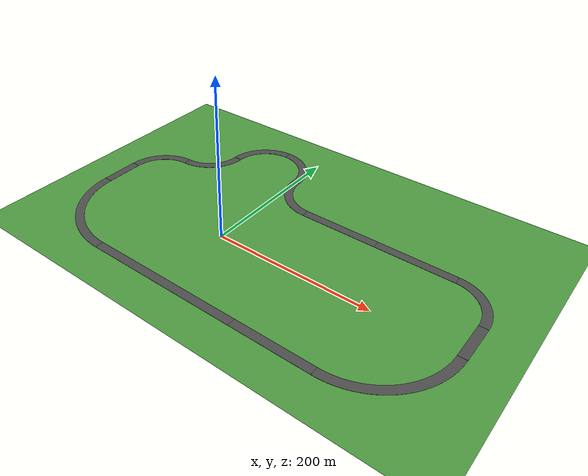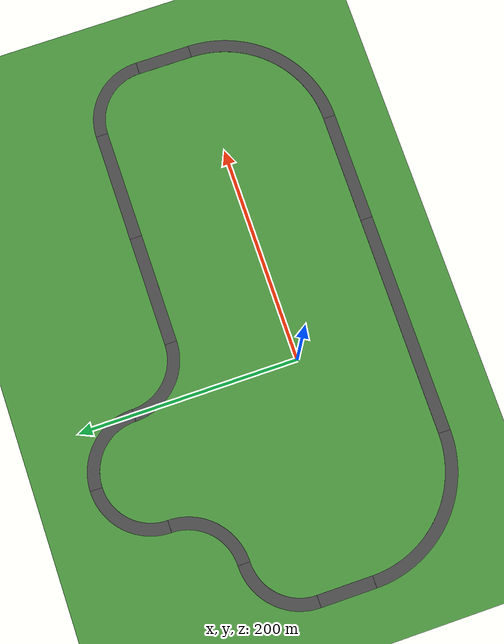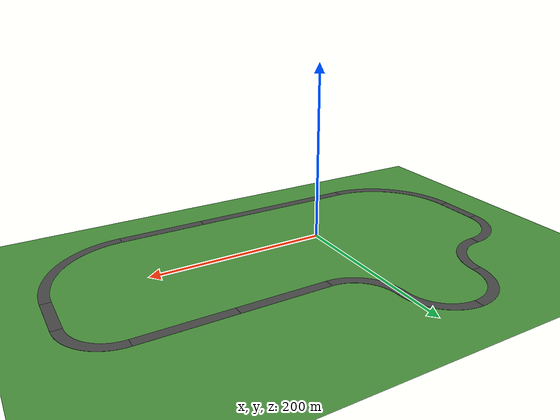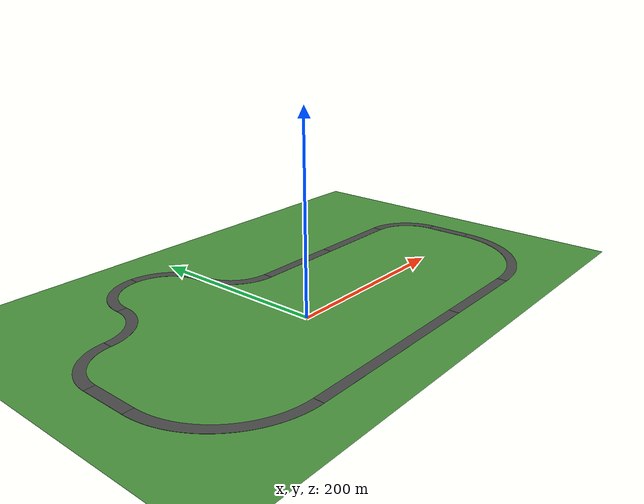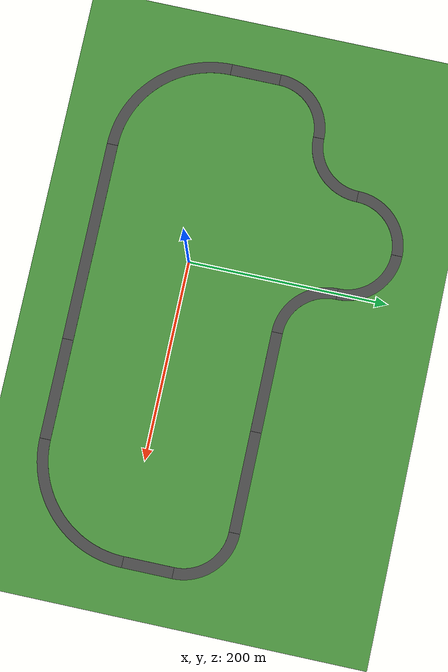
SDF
<?xml version="1.0" ?>

<sdf version="1.6">
  <world name="default">
    <!-- ROS2 Gazebo plugins -->
    <plugin name="gazebo_ros_api_plugin" filename="libgazebo_ros_api_plugin.so"/>
    <plugin name="gazebo_ros_init" filename="libgazebo_ros_init.so">
    </plugin>

    <plugin name="gazebo_ros_factory" filename="libgazebo_ros_factory.so">
    </plugin>

    <plugin name="gazebo_ros_state" filename="libgazebo_ros_state.so">
      <update_rate>10.0</update_rate>
    </plugin>

    <light name='sun' type='directional'>
      <cast_shadows>1</cast_shadows>
      <pose frame=''>0 0 10 0 -0 0</pose>
      <diffuse>0.8 0.8 0.8 1</diffuse>
      <specular>0.2 0.2 0.2 1</specular>
      <attenuation>
        <range>1000</range>
        <constant>0.9</constant>
        <linear>0.01</linear>
        <quadratic>0.001</quadratic>
      </attenuation>
      <direction>-0.5 0.1 -0.9</direction>
    </light>

    <gravity>0 0 -9.8</gravity>
    <magnetic_field>6e-06 2.3e-05 -4.2e-05</magnetic_field>
    <atmosphere type='adiabatic'/>
    <physics name='default_physics' default='0' type='ode'>
      <max_step_size>0.001</max_step_size>
      <real_time_factor>1</real_time_factor>
      <real_time_update_rate>1000</real_time_update_rate>
    </physics>
    <scene>
      <ambient>0.4 0.4 0.4 1</ambient>
      <background>0.7 0.7 0.7 1</background>
      <shadows>1</shadows>
      <grid>0</grid>
    </scene>
    <spherical_coordinates>
      <surface_model>EARTH_WGS84</surface_model>
      <latitude_deg>0</latitude_deg>
      <longitude_deg>0</longitude_deg>
      <elevation>0</elevation>
      <heading_deg>0</heading_deg>
    </spherical_coordinates>
    <gui fullscreen='0'>
      <camera name='user_camera'>
        <pose frame=''>0 0 0 0 1.5698 -0.033515</pose>
        <view_controller>ortho</view_controller>
        <projection_type>orthographic</projection_type>
      </camera>
    </gui>

    <model name='ground_plane'>
      <static>1</static>
      <pose frame=''>0 0 0 0 -0 0</pose>
      <link name='link'>
        <collision name='collision'>
          <geometry>
            <plane>
              <normal>0 0 1</normal>
              <size>100 100</size>
            </plane>
          </geometry>
          <surface>
            <friction>
              <ode>
                <mu>100</mu>
                <mu2>50</mu2>
              </ode>
              <torsional>
                <ode/>
              </torsional>
            </friction>
            <contact>
              <ode/>
            </contact>
            <bounce/>
          </surface>
          <max_contacts>10</max_contacts>
        </collision>
        <visual name='visual'>
          <cast_shadows>0</cast_shadows>
          <geometry>
            <plane>
              <normal>0 0 1</normal>
              <size>10000 10000</size>
            </plane>
          </geometry>
          <material>
            <script>
              <uri>file://media/materials/scripts/ds_sim.material</uri>
              <name>DSSim/GrassBackground</name>
            </script>
          </material>
        </visual>
        <self_collide>0</self_collide>
        <kinematic>0</kinematic>
        <enable_wind>0</enable_wind>
      </link>
    </model>

    <!-- ROAD MODEL STARTS HERE -->
    <model name='(DS) Straight Road - 200m_8'>
      <static>1</static>
      <pose frame=''>0 -90 0 0 -0 0</pose>
      <link name='link'>
        <inertial>
          <pose frame=''>0 0 0 0 -0 0</pose>
          <mass>1</mass>
          <inertia>
            <ixx>1</ixx>
            <iyy>1</iyy>
            <izz>1</izz>
            <ixy>0</ixy>
            <ixz>0</ixz>
            <iyz>0</iyz>
          </inertia>
        </inertial>
        <collision name='collision'>
          <geometry>
            <mesh>
              <uri>model://ds_straight_road_200m/meshes/straight_road_200m.dae</uri>
            </mesh>
          </geometry>
          <max_contacts>10</max_contacts>
          <surface>
            <contact>
              <ode/>
            </contact>
            <bounce/>
            <friction>
              <ode/>
              <torsional>
                <ode/>
              </torsional>
            </friction>
          </surface>
        </collision>
        <visual name='visual'>
          <geometry>
            <mesh>
              <uri>model://ds_straight_road_200m/meshes/straight_road_200m.dae</uri>
            </mesh>
          </geometry>
          <material>
            <script>
              <uri>file://media/materials/scripts/ds_sim.material</uri>
              <name>DSSim/Road</name>
            </script>
          </material>
        </visual>
        <self_collide>0</self_collide>
        <kinematic>0</kinematic>
        <gravity>1</gravity>
        <enable_wind>0</enable_wind>
      </link>
    </model>

    <model name='(DS) Straight Road - 100m_0'>
      <static>1</static>
      <pose frame=''>150 -90 0 0 -0 0</pose>
      <link name='link'>
        <inertial>
          <pose frame=''>0 0 0 0 -0 0</pose>
          <mass>1</mass>
          <inertia>
            <ixx>1</ixx>
            <iyy>1</iyy>
            <izz>1</izz>
            <ixy>0</ixy>
            <ixz>0</ixz>
            <iyz>0</iyz>
          </inertia>
        </inertial>
        <collision name='collision'>
          <geometry>
            <mesh>
              <uri>model://ds_straight_road_100m/meshes/straight_road_100m.dae</uri>
            </mesh>
          </geometry>
          <max_contacts>10</max_contacts>
          <surface>
            <contact>
              <ode/>
            </contact>
            <bounce/>
            <friction>
              <ode/>
              <torsional>
                <ode/>
              </torsional>
            </friction>
          </surface>
        </collision>
        <visual name='visual'>
          <geometry>
            <mesh>
              <uri>model://ds_straight_road_100m/meshes/straight_road_100m.dae</uri>
            </mesh>
          </geometry>
          <material>
            <script>
              <uri>file://media/materials/scripts/ds_sim.material</uri>
              <name>DSSim/Road</name>
            </script>
          </material>
        </visual>
        <self_collide>0</self_collide>
        <kinematic>0</kinematic>
        <gravity>1</gravity>
        <enable_wind>0</enable_wind>
      </link>
    </model>

    <model name='(DS) Curved Road - 100m_9'>
      <static>1</static>
      <pose frame=''>252.75 -52.75 0 0 -0 0</pose>
      <link name='link'>
        <inertial>
          <pose frame=''>0 0 0 0 -0 0</pose>
          <mass>1</mass>
          <inertia>
            <ixx>1</ixx>
            <iyy>1</iyy>
            <izz>1</izz>
            <ixy>0</ixy>
            <ixz>0</ixz>
            <iyz>0</iyz>
          </inertia>
        </inertial>
        <collision name='collision'>
          <geometry>
            <mesh>
              <uri>model://ds_curved_road_100m/meshes/curved_road_100m.dae</uri>
            </mesh>
          </geometry>
          <max_contacts>10</max_contacts>
          <surface>
            <contact>
              <ode/>
            </contact>
            <bounce/>
            <friction>
              <ode/>
              <torsional>
                <ode/>
              </torsional>
            </friction>
          </surface>
        </collision>
        <visual name='visual'>
          <geometry>
            <mesh>
              <uri>model://ds_curved_road_100m/meshes/curved_road_100m.dae</uri>
            </mesh>
          </geometry>
          <material>
            <script>
              <uri>file://media/materials/scripts/ds_sim.material</uri>
              <name>DSSim/Road</name>
            </script>
          </material>
        </visual>
        <self_collide>0</self_collide>
        <kinematic>0</kinematic>
        <gravity>1</gravity>
        <enable_wind>0</enable_wind>
      </link>
    </model>

    <model name='(DS) Straight Road - 50m'>
      <static>1</static>
      <pose frame=''>290 25 0 0 0 1.5708</pose>
      <link name='link'>
        <inertial>
          <pose frame=''>0 0 0 0 -0 0</pose>
          <mass>1</mass>
          <inertia>
            <ixx>1</ixx>
            <iyy>1</iyy>
            <izz>1</izz>
            <ixy>0</ixy>
            <ixz>0</ixz>
            <iyz>0</iyz>
          </inertia>
        </inertial>
        <collision name='collision'>
          <geometry>
            <mesh>
              <uri>model://ds_straight_road_50m/meshes/straight_road_50m.dae</uri>
            </mesh>
          </geometry>
          <max_contacts>10</max_contacts>
          <surface>
            <contact>
              <ode/>
            </contact>
            <bounce/>
            <friction>
              <ode/>
              <torsional>
                <ode/>
              </torsional>
            </friction>
          </surface>
        </collision>
        <visual name='visual'>
          <geometry>
            <mesh>
              <uri>model://ds_straight_road_50m/meshes/straight_road_50m.dae</uri>
            </mesh>
          </geometry>
          <material>
            <script>
              <uri>file://media/materials/scripts/ds_sim.material</uri>
              <name>DSSim/Road</name>
            </script>
          </material>
        </visual>
        <self_collide>0</self_collide>
        <kinematic>0</kinematic>
        <gravity>1</gravity>
        <enable_wind>0</enable_wind>
      </link>
    </model>

    <model name='(DS) Curved Road - 50m_7'>
      <static>1</static>
      <pose frame=''>277.75 77.75 0 0 -0 1.5708</pose>
      <link name='link'>
        <inertial>
          <pose frame=''>0 0 0 0 -0 0</pose>
          <mass>1</mass>
          <inertia>
            <ixx>1</ixx>
            <iyy>1</iyy>
            <izz>1</izz>
            <ixy>0</ixy>
            <ixz>0</ixz>
            <iyz>0</iyz>
          </inertia>
        </inertial>
        <collision name='collision'>
          <geometry>
            <mesh>
              <uri>model://ds_curved_road_50m/meshes/curved_road_50m.dae</uri>
            </mesh>
          </geometry>
          <max_contacts>10</max_contacts>
          <surface>
            <contact>
              <ode/>
            </contact>
            <bounce/>
            <friction>
              <ode/>
              <torsional>
                <ode/>
              </torsional>
            </friction>
          </surface>
        </collision>
        <visual name='visual'>
          <geometry>
            <mesh>
              <uri>model://ds_curved_road_50m/meshes/curved_road_50m.dae</uri>
            </mesh>
          </geometry>
          <material>
            <script>
              <uri>file://media/materials/scripts/ds_sim.material</uri>
              <name>DSSim/Road</name>
            </script>
          </material>
        </visual>
        <self_collide>0</self_collide>
        <kinematic>0</kinematic>
        <gravity>1</gravity>
        <enable_wind>0</enable_wind>
      </link>
    </model>

    <model name='(DS) Straight Road - 100m_6'>
      <static>1</static>
      <pose frame=''>200 110 0 0 -0 -0</pose>
      <link name='link'>
        <inertial>
          <pose frame=''>0 0 0 0 -0 0</pose>
          <mass>1</mass>
          <inertia>
            <ixx>1</ixx>
            <iyy>1</iyy>
            <izz>1</izz>
            <ixy>0</ixy>
            <ixz>0</ixz>
            <iyz>0</iyz>
          </inertia>
        </inertial>
        <collision name='collision'>
          <geometry>
            <mesh>
              <uri>model://ds_straight_road_100m/meshes/straight_road_100m.dae</uri>
            </mesh>
          </geometry>
          <max_contacts>10</max_contacts>
          <surface>
            <contact>
              <ode/>
            </contact>
            <bounce/>
            <friction>
              <ode/>
              <torsional>
                <ode/>
              </torsional>
            </friction>
          </surface>
        </collision>
        <visual name='visual'>
          <geometry>
            <mesh>
              <uri>model://ds_straight_road_100m/meshes/straight_road_100m.dae</uri>
            </mesh>
          </geometry>
          <material>
            <script>
              <uri>file://media/materials/scripts/ds_sim.material</uri>
              <name>DSSim/Road</name>
            </script>
          </material>
        </visual>
        <self_collide>0</self_collide>
        <kinematic>0</kinematic>
        <gravity>1</gravity>
        <enable_wind>0</enable_wind>
      </link>
    </model>

    <model name='(DS) Straight Road - 100m_6_clone'>
      <static>1</static>
      <pose frame=''>100 110 0 0 -0 -6.28318</pose>
      <link name='link'>
        <inertial>
          <pose frame=''>0 0 0 0 -0 0</pose>
          <mass>1</mass>
          <inertia>
            <ixx>1</ixx>
            <iyy>1</iyy>
            <izz>1</izz>
            <ixy>0</ixy>
            <ixz>0</ixz>
            <iyz>0</iyz>
          </inertia>
        </inertial>
        <collision name='collision'>
          <geometry>
            <mesh>
              <uri>model://ds_straight_road_100m/meshes/straight_road_100m.dae</uri>
            </mesh>
          </geometry>
          <max_contacts>10</max_contacts>
          <surface>
            <contact>
              <ode/>
            </contact>
            <bounce/>
            <friction>
              <ode/>
              <torsional>
                <ode/>
              </torsional>
            </friction>
          </surface>
        </collision>
        <visual name='visual'>
          <geometry>
            <mesh>
              <uri>model://ds_straight_road_100m/meshes/straight_road_100m.dae</uri>
            </mesh>
          </geometry>
          <material>
            <script>
              <uri>file://media/materials/scripts/ds_sim.material</uri>
              <name>DSSim/Road</name>
            </script>
          </material>
        </visual>
        <self_collide>0</self_collide>
        <kinematic>0</kinematic>
        <gravity>1</gravity>
        <enable_wind>0</enable_wind>
      </link>
    </model>

    <model name='(DS) Curved Road - 50m_12'>
      <static>1</static>
      <pose frame=''>22.25 122.25 0 0 0 -1.5708</pose>
      <link name='link'>
        <inertial>
          <pose frame=''>0 0 0 0 -0 0</pose>
          <mass>1</mass>
          <inertia>
            <ixx>1</ixx>
            <iyy>1</iyy>
            <izz>1</izz>
            <ixy>0</ixy>
            <ixz>0</ixz>
            <iyz>0</iyz>
          </inertia>
        </inertial>
        <collision name='collision'>
          <geometry>
            <mesh>
              <uri>model://ds_curved_road_50m/meshes/curved_road_50m.dae</uri>
            </mesh>
          </geometry>
          <max_contacts>10</max_contacts>
          <surface>
            <contact>
              <ode/>
            </contact>
            <bounce/>
            <friction>
              <ode/>
              <torsional>
                <ode/>
              </torsional>
            </friction>
          </surface>
        </collision>
        <visual name='visual'>
          <geometry>
            <mesh>
              <uri>model://ds_curved_road_50m/meshes/curved_road_50m.dae</uri>
            </mesh>
          </geometry>
          <material>
            <script>
              <uri>file://media/materials/scripts/ds_sim.material</uri>
              <name>DSSim/Road</name>
            </script>
          </material>
        </visual>
        <self_collide>0</self_collide>
        <kinematic>0</kinematic>
        <gravity>1</gravity>
        <enable_wind>0</enable_wind>
      </link>
    </model>

    <model name='(DS) Curved Road - 50m_3'>
      <static>1</static>
      <pose frame=''>-22.25 177.75 0 0 -0 1.5708</pose>
      <link name='link'>
        <inertial>
          <pose frame=''>0 0 0 0 -0 0</pose>
          <mass>1</mass>
          <inertia>
            <ixx>1</ixx>
            <iyy>1</iyy>
            <izz>1</izz>
            <ixy>0</ixy>
            <ixz>0</ixz>
            <iyz>0</iyz>
          </inertia>
        </inertial>
        <collision name='collision'>
          <geometry>
            <mesh>
              <uri>model://ds_curved_road_50m/meshes/curved_road_50m.dae</uri>
            </mesh>
          </geometry>
          <max_contacts>10</max_contacts>
          <surface>
            <contact>
              <ode/>
            </contact>
            <bounce/>
            <friction>
              <ode/>
              <torsional>
                <ode/>
              </torsional>
            </friction>
          </surface>
        </collision>
        <visual name='visual'>
          <geometry>
            <mesh>
              <uri>model://ds_curved_road_50m/meshes/curved_road_50m.dae</uri>
            </mesh>
          </geometry>
          <material>
            <script>
              <uri>file://media/materials/scripts/ds_sim.material</uri>
              <name>DSSim/Road</name>
            </script>
          </material>
        </visual>
        <self_collide>0</self_collide>
        <kinematic>0</kinematic>
        <gravity>1</gravity>
        <enable_wind>0</enable_wind>
      </link>
    </model>

    <model name='(DS) Curved Road - 50m_8'>
      <static>1</static>
      <pose frame=''>-77.75 177.75 0 0 -0 3.1416</pose>
      <link name='link'>
        <inertial>
          <pose frame=''>0 0 0 0 -0 0</pose>
          <mass>1</mass>
          <inertia>
            <ixx>1</ixx>
            <iyy>1</iyy>
            <izz>1</izz>
            <ixy>0</ixy>
            <ixz>0</ixz>
            <iyz>0</iyz>
          </inertia>
        </inertial>
        <collision name='collision'>
          <geometry>
            <mesh>
              <uri>model://ds_curved_road_50m/meshes/curved_road_50m.dae</uri>
            </mesh>
          </geometry>
          <max_contacts>10</max_contacts>
          <surface>
            <contact>
              <ode/>
            </contact>
            <bounce/>
            <friction>
              <ode/>
              <torsional>
                <ode/>
              </torsional>
            </friction>
          </surface>
        </collision>
        <visual name='visual'>
          <geometry>
            <mesh>
              <uri>model://ds_curved_road_50m/meshes/curved_road_50m.dae</uri>
            </mesh>
          </geometry>
          <material>
            <script>
              <uri>file://media/materials/scripts/ds_sim.material</uri>
              <name>DSSim/Road</name>
            </script>
          </material>
        </visual>
        <self_collide>0</self_collide>
        <kinematic>0</kinematic>
        <gravity>1</gravity>
        <enable_wind>0</enable_wind>
      </link>
    </model>

    <model name='(DS) Curved Road - 50m_2'>
      <static>1</static>
      <pose frame=''>-122.25 122.25 0 0 -0 0</pose>
      <link name='link'>
        <inertial>
          <pose frame=''>0 0 0 0 -0 0</pose>
          <mass>1</mass>
          <inertia>
            <ixx>1</ixx>
            <iyy>1</iyy>
            <izz>1</izz>
            <ixy>0</ixy>
            <ixz>0</ixz>
            <iyz>0</iyz>
          </inertia>
        </inertial>
        <collision name='collision'>
          <geometry>
            <mesh>
              <uri>model://ds_curved_road_50m/meshes/curved_road_50m.dae</uri>
            </mesh>
          </geometry>
          <max_contacts>10</max_contacts>
          <surface>
            <contact>
              <ode/>
            </contact>
            <bounce/>
            <friction>
              <ode/>
              <torsional>
                <ode/>
              </torsional>
            </friction>
          </surface>
        </collision>
        <visual name='visual'>
          <geometry>
            <mesh>
              <uri>model://ds_curved_road_50m/meshes/curved_road_50m.dae</uri>
            </mesh>
          </geometry>
          <material>
            <script>
              <uri>file://media/materials/scripts/ds_sim.material</uri>
              <name>DSSim/Road</name>
            </script>
          </material>
        </visual>
        <self_collide>0</self_collide>
        <kinematic>0</kinematic>
        <gravity>1</gravity>
        <enable_wind>0</enable_wind>
      </link>
    </model>

    <model name='(DS) Curved Road - 50m_1'>
      <static>1</static>
      <pose frame=''>-177.75 77.75 0 0 -0 3.1416</pose>
      <link name='link'>
        <inertial>
          <pose frame=''>0 0 0 0 -0 0</pose>
          <mass>1</mass>
          <inertia>
            <ixx>1</ixx>
            <iyy>1</iyy>
            <izz>1</izz>
            <ixy>0</ixy>
            <ixz>0</ixz>
            <iyz>0</iyz>
          </inertia>
        </inertial>
        <collision name='collision'>
          <geometry>
            <mesh>
              <uri>model://ds_curved_road_50m/meshes/curved_road_50m.dae</uri>
            </mesh>
          </geometry>
          <max_contacts>10</max_contacts>
          <surface>
            <contact>
              <ode/>
            </contact>
            <bounce/>
            <friction>
              <ode/>
              <torsional>
                <ode/>
              </torsional>
            </friction>
          </surface>
        </collision>
        <visual name='visual'>
          <geometry>
            <mesh>
              <uri>model://ds_curved_road_50m/meshes/curved_road_50m.dae</uri>
            </mesh>
          </geometry>
          <material>
            <script>
              <uri>file://media/materials/scripts/ds_sim.material</uri>
              <name>DSSim/Road</name>
            </script>
          </material>
        </visual>
        <self_collide>0</self_collide>
        <kinematic>0</kinematic>
        <gravity>1</gravity>
        <enable_wind>0</enable_wind>
      </link>
    </model>

    <model name='(DS) Straight Road - 50m_2'>
      <static>1</static>
      <pose frame=''>-210 25 0 0 -0 1.5708</pose>
      <link name='link'>
        <inertial>
          <pose frame=''>0 0 0 0 -0 0</pose>
          <mass>1</mass>
          <inertia>
            <ixx>1</ixx>
            <iyy>1</iyy>
            <izz>1</izz>
            <ixy>0</ixy>
            <ixz>0</ixz>
            <iyz>0</iyz>
          </inertia>
        </inertial>
        <collision name='collision'>
          <geometry>
            <mesh>
              <uri>model://ds_straight_road_50m/meshes/straight_road_50m.dae</uri>
            </mesh>
          </geometry>
          <max_contacts>10</max_contacts>
          <surface>
            <contact>
              <ode/>
            </contact>
            <bounce/>
            <friction>
              <ode/>
              <torsional>
                <ode/>
              </torsional>
            </friction>
          </surface>
        </collision>
        <visual name='visual'>
          <geometry>
            <mesh>
              <uri>model://ds_straight_road_50m/meshes/straight_road_50m.dae</uri>
            </mesh>
          </geometry>
          <material>
            <script>
              <uri>file://media/materials/scripts/ds_sim.material</uri>
              <name>DSSim/Road</name>
            </script>
          </material>
        </visual>
        <self_collide>0</self_collide>
        <kinematic>0</kinematic>
        <gravity>1</gravity>
        <enable_wind>0</enable_wind>
      </link>
    </model>

    <model name='(DS) Curved Road - 100m_7'>
      <static>1</static>
      <pose frame=''>-152.75 -52.75 0 0 0 -1.5708</pose>
      <link name='link'>
        <inertial>
          <pose frame=''>0 0 0 0 -0 0</pose>
          <mass>1</mass>
          <inertia>
            <ixx>1</ixx>
            <iyy>1</iyy>
            <izz>1</izz>
            <ixy>0</ixy>
            <ixz>0</ixz>
            <iyz>0</iyz>
          </inertia>
        </inertial>
        <collision name='collision'>
          <geometry>
            <mesh>
              <uri>model://ds_curved_road_100m/meshes/curved_road_100m.dae</uri>
            </mesh>
          </geometry>
          <max_contacts>10</max_contacts>
          <surface>
            <contact>
              <ode/>
            </contact>
            <bounce/>
            <friction>
              <ode/>
              <torsional>
                <ode/>
              </torsional>
            </friction>
          </surface>
        </collision>
        <visual name='visual'>
          <geometry>
            <mesh>
              <uri>model://ds_curved_road_100m/meshes/curved_road_100m.dae</uri>
            </mesh>
          </geometry>
          <material>
            <script>
              <uri>file://media/materials/scripts/ds_sim.material</uri>
              <name>DSSim/Road</name>
            </script>
          </material>
        </visual>
        <self_collide>0</self_collide>
        <kinematic>0</kinematic>
        <gravity>1</gravity>
        <enable_wind>0</enable_wind>
      </link>
    </model>
  </world>
</sdf>
